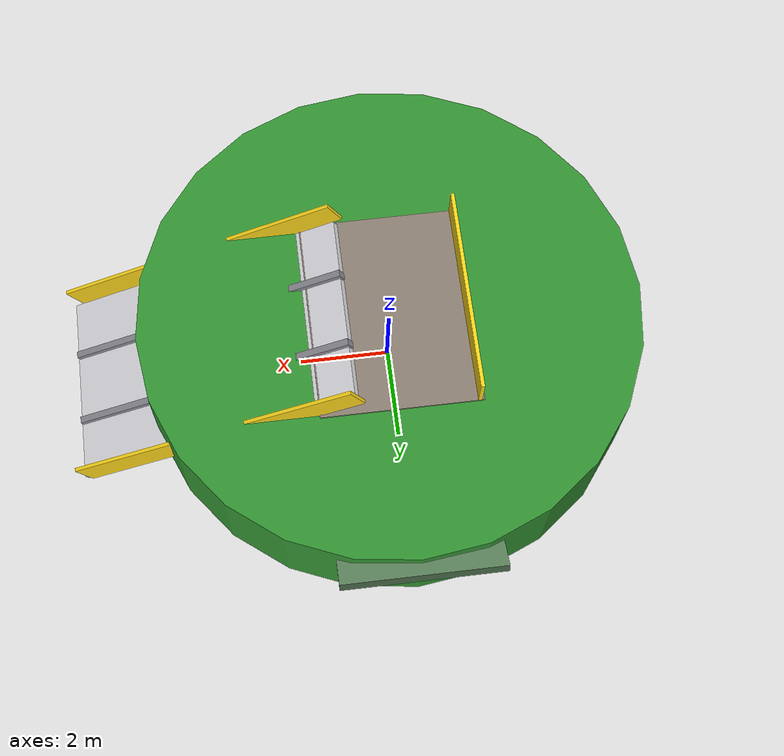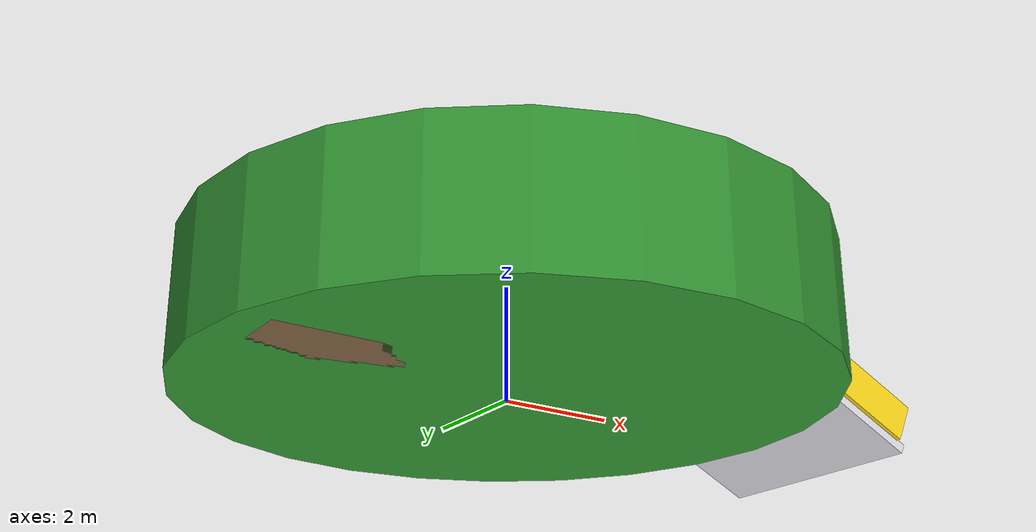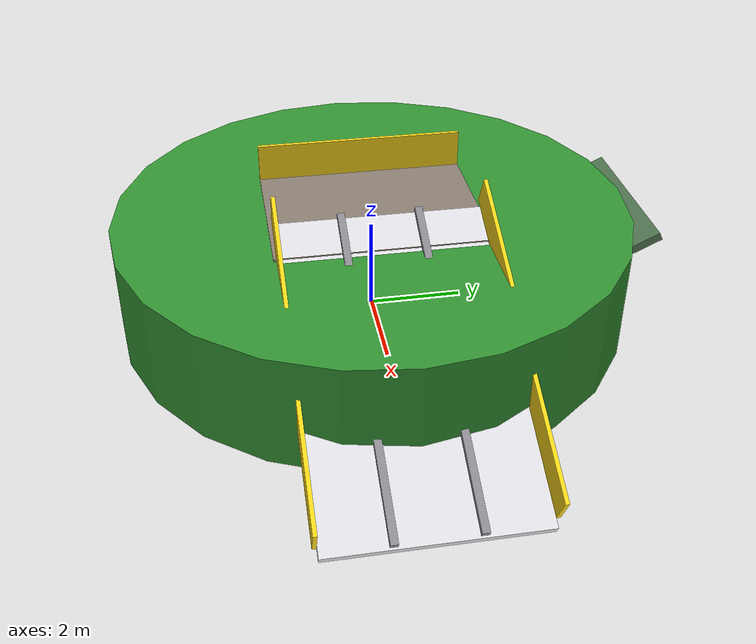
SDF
<?xml version="1.0" ?>
<sdf version="1.8">
  <model name="terrazzo_slide">
    <static>true</static>
    <link name="slide_link">
      <!-- 物理碰撞剛體：小丘主體、滑梯斜面與頂部平台 -->
      <collision name="mound_col">
        <pose>0 0 1.2 0 0 0</pose>
        <geometry>
          <cylinder><radius>5.5</radius><length>2.4</length></cylinder>
        </geometry>
      </collision>
      <collision name="slide_ramp_col">
        <pose>4.0 0 1.2 0 0.45 0</pose>
        <geometry>
          <box><size>6.8 4.2 0.3</size></box>
        </geometry>
        <surface>
          <friction><ode><mu>0.15</mu><mu2>0.15</mu2></ode></friction>
        </surface>
      </collision>
      <collision name="top_platform_col">
        <pose>0 0 2.3 0 0 0</pose>
        <geometry>
          <box><size>3.5 4.5 0.3</size></box>
        </geometry>
      </collision>

      <!-- 視覺呈現：人工草皮地景遊戲山丘 (Landscaped Green Mound) -->
      <visual name="mound_vis">
        <pose>0 0 1.2 0 0 0</pose>
        <geometry>
          <cylinder><radius>5.5</radius><length>2.4</length></cylinder>
        </geometry>
        <material>
          <ambient>0.16 0.52 0.16 1</ambient>
          <diffuse>0.20 0.58 0.20 1</diffuse>
        </material>
      </visual>

      <!-- 視覺呈現：頂部平臺 (Top Platform - 安全鋪面) -->
      <visual name="top_platform_vis">
        <pose>0 0 2.35 0 0 0</pose>
        <geometry>
          <box><size>3.5 4.5 0.2</size></box>
        </geometry>
        <material>
          <ambient>0.5 0.45 0.4 1</ambient>
          <diffuse>0.55 0.5 0.45 1</diffuse>
        </material>
      </visual>

      <!-- 視覺呈現：標誌性磨石子滑道床面 (Polished Terrazzo Slide Bed) -->
      <!-- 寬 4.2m，長 6.8m，傾角約 26 度 -->
      <visual name="terrazzo_surface">
        <pose>4.0 0 1.25 0 0.45 0</pose>
        <geometry>
          <box><size>6.8 4.2 0.18</size></box>
        </geometry>
        <material>
          <ambient>0.82 0.82 0.84 1</ambient>
          <diffuse>0.88 0.88 0.90 1</diffuse>
          <specular>0.6 0.6 0.65 1</specular>
        </material>
      </visual>

      <!-- 視覺呈現：滑道分流分隔石條 (Lane Dividers: 中央寬滑道 + 兩側單人滑道) -->
      <visual name="divider_l">
        <pose>4.0 -0.8 1.35 0 0.45 0</pose>
        <geometry>
          <box><size>6.8 0.15 0.25</size></box>
        </geometry>
        <material>
          <ambient>0.5 0.5 0.52 1</ambient>
          <diffuse>0.55 0.55 0.58 1</diffuse>
        </material>
      </visual>
      <visual name="divider_r">
        <pose>4.0 0.8 1.35 0 0.45 0</pose>
        <geometry>
          <box><size>6.8 0.15 0.25</size></box>
        </geometry>
        <material>
          <ambient>0.5 0.5 0.52 1</ambient>
          <diffuse>0.55 0.55 0.58 1</diffuse>
        </material>
      </visual>

      <!-- 視覺呈現：鮮黃色安全護欄 (Yellow Safety Handrails) -->
      <visual name="rail_left">
        <pose>4.0 -2.15 1.7 0 0.45 0</pose>
        <geometry>
          <box><size>6.8 0.08 0.7</size></box>
        </geometry>
        <material>
          <ambient>0.95 0.8 0.05 1</ambient>
          <diffuse>1.0 0.85 0.1 1</diffuse>
        </material>
      </visual>
      <visual name="rail_right">
        <pose>4.0 2.15 1.7 0 0.45 0</pose>
        <geometry>
          <box><size>6.8 0.08 0.7</size></box>
        </geometry>
        <material>
          <ambient>0.95 0.8 0.05 1</ambient>
          <diffuse>1.0 0.85 0.1 1</diffuse>
        </material>
      </visual>

      <!-- 視覺呈現：頂部平臺防護欄杆 -->
      <visual name="top_rail_back">
        <pose>-1.65 0 2.8 0 0 0</pose>
        <geometry>
          <box><size>0.08 4.5 0.9</size></box>
        </geometry>
        <material>
          <ambient>0.95 0.8 0.05 1</ambient>
          <diffuse>1.0 0.85 0.1 1</diffuse>
        </material>
      </visual>

      <!-- 視覺呈現：側面攀爬岩塊坡道 (Climbing Rock Grips Slope) -->
      <visual name="climbing_slope">
        <pose>0 3.8 1.2 0.45 0 0</pose>
        <geometry>
          <box><size>3.5 4.5 0.18</size></box>
        </geometry>
        <material>
          <ambient>0.3 0.45 0.3 1</ambient>
          <diffuse>0.35 0.5 0.35 1</diffuse>
        </material>
      </visual>
      <!-- 彩色攀爬岩塊 (Rock Grips) -->
      <visual name="grip_1"><pose>-0.8 3.5 1.4 0 0 0</pose><geometry><box><size>0.2 0.2 0.1</size></box></geometry><material><ambient>0.9 0.1 0.1 1</ambient><diffuse>0.9 0.1 0.1 1</diffuse></material></visual>
      <visual name="grip_2"><pose>0.6 3.8 1.1 0 0 0</pose><geometry><box><size>0.2 0.2 0.1</size></box></geometry><material><ambient>0.1 0.3 0.9 1</ambient><diffuse>0.1 0.3 0.9 1</diffuse></material></visual>
      <visual name="grip_3"><pose>-0.3 4.2 0.8 0 0 0</pose><geometry><box><size>0.2 0.2 0.1</size></box></geometry><material><ambient>0.9 0.8 0.1 1</ambient><diffuse>0.9 0.8 0.1 1</diffuse></material></visual>

      <!-- 視覺呈現：後方木質登頂階梯 (Timber Climbing Stairs) -->
      <visual name="stairs_block">
        <pose>-3.5 0 1.1 0 0 0</pose>
        <geometry>
          <box><size>2.6 2.8 2.2</size></box>
        </geometry>
        <material>
          <ambient>0.45 0.32 0.22 1</ambient>
          <diffuse>0.5 0.38 0.26 1</diffuse>
        </material>
      </visual>
    </link>
  </model>
</sdf>
